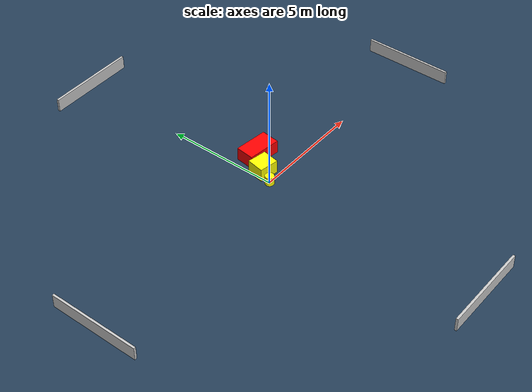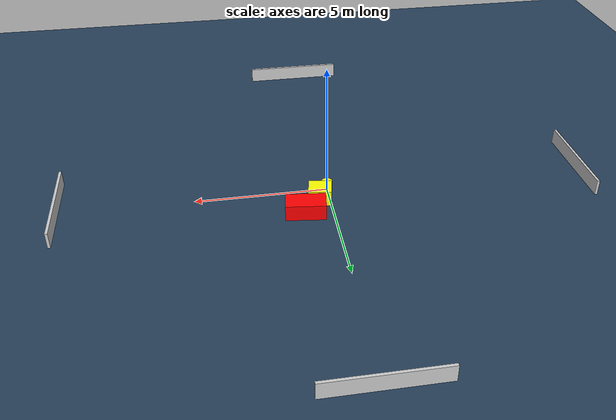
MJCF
<?xml version="1.0" ?>
<mujoco model="generated_environment">
  <option timestep="0.01" integrator="RK4" cone="elliptic"/>
  <default>
    <geom density="1"/>
  </default>
  <asset>
    <texture builtin="gradient" height="3072" name="skybox" rgb1="0.3 0.5 0.7" rgb2="0 0 0" type="skybox" width="512"/>
    <texture builtin="checker" height="300" name="groundplane" rgb1="0.2 0.3 0.4" rgb2="0.1 0.2 0.3" type="2d" width="300"/>
    <material name="groundplane" reflectance="0.2" texrepeat="5 5" texture="groundplane"/>
  </asset>
  <worldbody>
    <light dir="0 0 -1" directional="true" pos="0 0 1.5"/>
    <geom condim="3" friction="0.5 0.005 0.001" material="groundplane" name="floor" pos="0 0 0" size="0 0 0.05" type="plane"/>
    <body name="walls">
      <geom name="wall_1" condim="4" pos="-10.0 0.0 0.3" rgba="0.800000011920929 0.800000011920929 0.800000011920929 1.0" size="0.05 2.0 0.3" type="box"/>
      <geom name="wall_2" condim="4" pos="10.0 0.0 0.3" rgba="0.800000011920929 0.800000011920929 0.800000011920929 1.0" size="0.05 2.0 0.3" type="box"/>
      <geom name="wall_3" condim="4" pos="0.0 -10.0 0.3" rgba="0.800000011920929 0.800000011920929 0.800000011920929 1.0" size="2.0 0.05 0.3" type="box"/>
      <geom name="wall_4" condim="4" pos="0.0 10.0 0.3" rgba="0.800000011920929 0.800000011920929 0.800000011920929 1.0" size="2.0 0.05 0.3" type="box"/>
    </body>
    <body name="robot">
      <joint name="joint_x" type="slide" pos="0 0 0" axis="1 0 0"/>
      <joint name="joint_y" type="slide" pos="0 0 0" axis="0 1 0"/>
      <geom name="robot" type="cylinder" pos="0.0 0.0 0.2" size="0.2 0.2 0.0" mass="5.0" friction="1.0 0.005 0.0001" condim="4" rgba="1.0 1.0 0.0 1.0"/>
    </body>
    <body name="obstacle_1_movable">
      <geom name="obstacle_1_movable" condim="4" pos="0.36126127008675274 0.6288619928482655 0.3" euler="0 0 259.9627103235698" friction="0.0 0.005 0.001" rgba="1.0 1.0 0.0 1.0" size="0.38604618680985114 0.4329907078421444 0.3" type="box" mass="0.1"/>
      <joint type="free"/>
    </body>
    <body name="obstacle_2_static">
      <geom name="obstacle_2_static" condim="4" pos="1.0182571535676732 1.4343620076285255 0.3" euler="0 0 172.96355468552778" friction="0.0 0.005 0.001" rgba="1.0 0.0 0.0 1.0" size="0.7396942554549311 0.4110834591256375 0.3" type="box"/>
    </body>
  </worldbody>
  <actuator>
    <motor name="actuator_x" joint="joint_x" gear="1" ctrlrange="-1 1"/>
    <motor name="actuator_y" joint="joint_y" gear="1" ctrlrange="-1 1"/>
  </actuator>
</mujoco>
